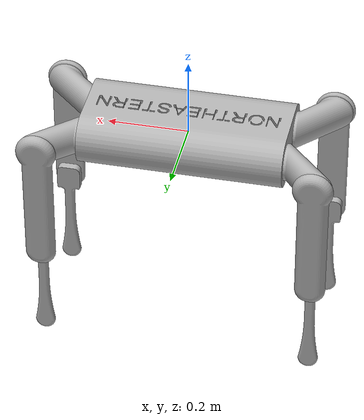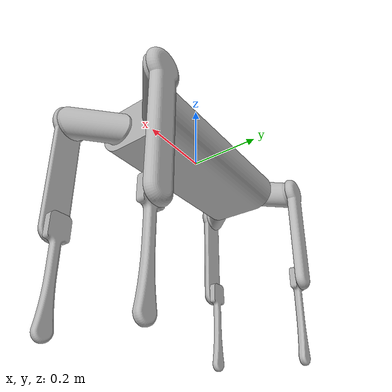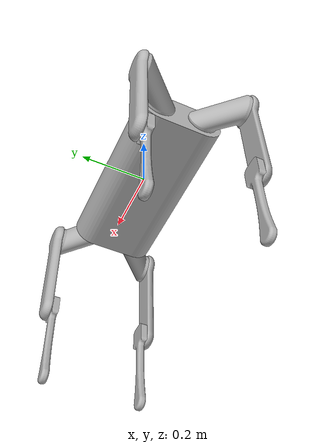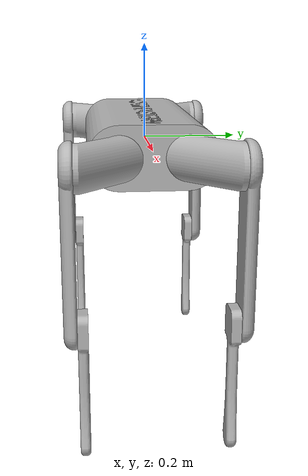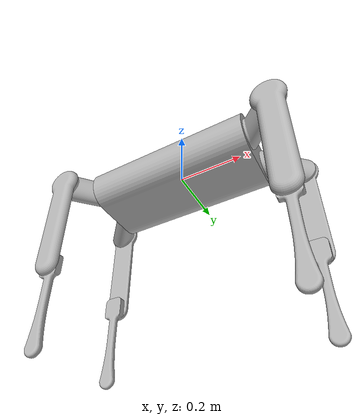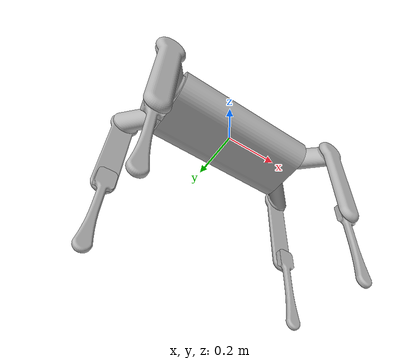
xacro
<?xml version="1.0" ?>
<robot name="proof_of_concept_3_dof_legs" xmlns:xacro="http://www.ros.org/wiki/xacro">

<xacro:include filename="$(find proof_of_concept_3_dof_legs_description)/urdf/materials.xacro" />
<xacro:include filename="$(find proof_of_concept_3_dof_legs_description)/urdf/proof_of_concept_3_dof_legs.trans" />
<xacro:include filename="$(find proof_of_concept_3_dof_legs_description)/urdf/proof_of_concept_3_dof_legs.gazebo" />
<link name="base_link">
  <inertial>
    <origin rpy="0 0 0" xyz="-0.00017512784283862714 -0.0022640105890242702 -0.004685230826412168"/>
    <mass value="113.28649675038626"/>
    <inertia ixx="0.655688" ixy="-1e-06" ixz="4.6e-05" iyy="2.474125" iyz="2.7e-05" izz="2.854946"/>
  </inertial>
  <visual>
    <origin rpy="0 0 0" xyz="0 0 0"/>
    <geometry>
      <mesh filename="package://proof_of_concept_3_dof_legs_description/meshes/base_link.stl" scale="0.001 0.001 0.001"/>
    </geometry>
    <material name="silver"/>
  </visual>
  <collision>
    <origin rpy="0 0 0" xyz="0 0 0"/>
    <geometry>
      <mesh filename="package://proof_of_concept_3_dof_legs_description/meshes/base_link.stl" scale="0.001 0.001 0.001"/>
    </geometry>
  </collision>
</link>

<link name="lf_connector_1">
  <inertial>
    <origin rpy="0 0 0" xyz="-0.05890692770524361 -0.04146661261388823 -3.508104041045901e-07"/>
    <mass value="5.973532362509098"/>
    <inertia ixx="0.011226" ixy="-0.006051" ixz="0.0" iyy="0.01025" iyz="0.0" izz="0.015428"/>
  </inertial>
  <visual>
    <origin rpy="0 0 0" xyz="0.241468 0.069352 0.004431"/>
    <geometry>
      <mesh filename="package://proof_of_concept_3_dof_legs_description/meshes/lf_connector_1.stl" scale="0.001 0.001 0.001"/>
    </geometry>
    <material name="silver"/>
  </visual>
  <collision>
    <origin rpy="0 0 0" xyz="0.241468 0.069352 0.004431"/>
    <geometry>
      <mesh filename="package://proof_of_concept_3_dof_legs_description/meshes/lf_connector_1.stl" scale="0.001 0.001 0.001"/>
    </geometry>
  </collision>
</link>

<link name="rf_connector_1">
  <inertial>
    <origin rpy="0 0 0" xyz="-0.05890692770524361 0.04146627542331387 -3.5081040409591646e-07"/>
    <mass value="5.973532362509098"/>
    <inertia ixx="0.011226" ixy="0.006051" ixz="0.0" iyy="0.01025" iyz="-0.0" izz="0.015428"/>
  </inertial>
  <visual>
    <origin rpy="0 0 0" xyz="0.241468 -0.064739 0.004431"/>
    <geometry>
      <mesh filename="package://proof_of_concept_3_dof_legs_description/meshes/rf_connector_1.stl" scale="0.001 0.001 0.001"/>
    </geometry>
    <material name="silver"/>
  </visual>
  <collision>
    <origin rpy="0 0 0" xyz="0.241468 -0.064739 0.004431"/>
    <geometry>
      <mesh filename="package://proof_of_concept_3_dof_legs_description/meshes/rf_connector_1.stl" scale="0.001 0.001 0.001"/>
    </geometry>
  </collision>
</link>

<link name="rh_connector_1">
  <inertial>
    <origin rpy="0 0 0" xyz="0.061564112863926934 0.037293263920169156 -3.5081040508904565e-07"/>
    <mass value="5.973532362509098"/>
    <inertia ixx="0.01025" ixy="-0.006051" ixz="0.0" iyy="0.011226" iyz="0.0" izz="0.015428"/>
  </inertial>
  <visual>
    <origin rpy="0 0 0" xyz="-0.241132 -0.064739 0.004431"/>
    <geometry>
      <mesh filename="package://proof_of_concept_3_dof_legs_description/meshes/rh_connector_1.stl" scale="0.001 0.001 0.001"/>
    </geometry>
    <material name="silver"/>
  </visual>
  <collision>
    <origin rpy="0 0 0" xyz="-0.241132 -0.064739 0.004431"/>
    <geometry>
      <mesh filename="package://proof_of_concept_3_dof_legs_description/meshes/rh_connector_1.stl" scale="0.001 0.001 0.001"/>
    </geometry>
  </collision>
</link>

<link name="lh_connector_1">
  <inertial>
    <origin rpy="0 0 0" xyz="0.06156411286392699 -0.03729360111074348 -3.5081040509858663e-07"/>
    <mass value="5.973532362509098"/>
    <inertia ixx="0.01025" ixy="0.006051" ixz="0.0" iyy="0.011226" iyz="-0.0" izz="0.015428"/>
  </inertial>
  <visual>
    <origin rpy="0 0 0" xyz="-0.241132 0.069352 0.004431"/>
    <geometry>
      <mesh filename="package://proof_of_concept_3_dof_legs_description/meshes/lh_connector_1.stl" scale="0.001 0.001 0.001"/>
    </geometry>
    <material name="silver"/>
  </visual>
  <collision>
    <origin rpy="0 0 0" xyz="-0.241132 0.069352 0.004431"/>
    <geometry>
      <mesh filename="package://proof_of_concept_3_dof_legs_description/meshes/lh_connector_1.stl" scale="0.001 0.001 0.001"/>
    </geometry>
  </collision>
</link>

<link name="lf_upper_1">
  <inertial>
    <origin rpy="0 0 0" xyz="0.001612157727558794 -0.002851019911941838 -0.14873802492206387"/>
    <mass value="4.692716099399879"/>
    <inertia ixx="0.049843" ixy="-5e-06" ixz="0.000212" iyy="0.05174" iyz="0.000359" izz="0.002346"/>
  </inertial>
  <visual>
    <origin rpy="0 0 0" xyz="0.337668 0.172383 0.004431"/>
    <geometry>
      <mesh filename="package://proof_of_concept_3_dof_legs_description/meshes/lf_upper_1.stl" scale="0.001 0.001 0.001"/>
    </geometry>
    <material name="silver"/>
  </visual>
  <collision>
    <origin rpy="0 0 0" xyz="0.337668 0.172383 0.004431"/>
    <geometry>
      <mesh filename="package://proof_of_concept_3_dof_legs_description/meshes/lf_upper_1.stl" scale="0.001 0.001 0.001"/>
    </geometry>
  </collision>
</link>

<link name="rf_upper_1">
  <inertial>
    <origin rpy="0 0 0" xyz="-0.0016125225409798771 0.0028506827213675145 -0.14873802492206414"/>
    <mass value="4.692716099399879"/>
    <inertia ixx="0.049843" ixy="-5e-06" ixz="-0.000212" iyy="0.05174" iyz="-0.000359" izz="0.002346"/>
  </inertial>
  <visual>
    <origin rpy="0 0 0" xyz="0.337668 -0.16777 0.004431"/>
    <geometry>
      <mesh filename="package://proof_of_concept_3_dof_legs_description/meshes/rf_upper_1.stl" scale="0.001 0.001 0.001"/>
    </geometry>
    <material name="silver"/>
  </visual>
  <collision>
    <origin rpy="0 0 0" xyz="0.337668 -0.16777 0.004431"/>
    <geometry>
      <mesh filename="package://proof_of_concept_3_dof_legs_description/meshes/rf_upper_1.stl" scale="0.001 0.001 0.001"/>
    </geometry>
  </collision>
</link>

<link name="rh_upper_1">
  <inertial>
    <origin rpy="0 0 0" xyz="-0.001611961065731582 0.0028511212461185542 -0.14873802492206517"/>
    <mass value="4.692716099399879"/>
    <inertia ixx="0.049843" ixy="-5e-06" ixz="-0.000212" iyy="0.05174" iyz="-0.000359" izz="0.002346"/>
  </inertial>
  <visual>
    <origin rpy="0 0 0" xyz="-0.344162 -0.160939 0.004431"/>
    <geometry>
      <mesh filename="package://proof_of_concept_3_dof_legs_description/meshes/rh_upper_1.stl" scale="0.001 0.001 0.001"/>
    </geometry>
    <material name="silver"/>
  </visual>
  <collision>
    <origin rpy="0 0 0" xyz="-0.344162 -0.160939 0.004431"/>
    <geometry>
      <mesh filename="package://proof_of_concept_3_dof_legs_description/meshes/rh_upper_1.stl" scale="0.001 0.001 0.001"/>
    </geometry>
  </collision>
</link>

<link name="lh_upper_1">
  <inertial>
    <origin rpy="0 0 0" xyz="0.0016127192028073112 -0.002851458436693405 -0.1487380249220648"/>
    <mass value="4.692716099399879"/>
    <inertia ixx="0.049843" ixy="-5e-06" ixz="0.000212" iyy="0.05174" iyz="0.000359" izz="0.002346"/>
  </inertial>
  <visual>
    <origin rpy="0 0 0" xyz="-0.344162 0.165552 0.004431"/>
    <geometry>
      <mesh filename="package://proof_of_concept_3_dof_legs_description/meshes/lh_upper_1.stl" scale="0.001 0.001 0.001"/>
    </geometry>
    <material name="silver"/>
  </visual>
  <collision>
    <origin rpy="0 0 0" xyz="-0.344162 0.165552 0.004431"/>
    <geometry>
      <mesh filename="package://proof_of_concept_3_dof_legs_description/meshes/lh_upper_1.stl" scale="0.001 0.001 0.001"/>
    </geometry>
  </collision>
</link>

<link name="lf_lower_1">
  <inertial>
    <origin rpy="0 0 0" xyz="-2.6893604017086403e-06 0.018739518858223253 -0.09273022678906145"/>
    <mass value="1.8340904220274463"/>
    <inertia ixx="0.016816" ixy="-0.0" ixz="0.0" iyy="0.01703" iyz="0.000214" izz="0.000385"/>
  </inertial>
  <visual>
    <origin rpy="0 0 0" xyz="0.335768 0.172383 0.309431"/>
    <geometry>
      <mesh filename="package://proof_of_concept_3_dof_legs_description/meshes/lf_lower_1.stl" scale="0.001 0.001 0.001"/>
    </geometry>
    <material name="silver"/>
  </visual>
  <collision>
    <origin rpy="0 0 0" xyz="0.335768 0.172383 0.309431"/>
    <geometry>
      <mesh filename="package://proof_of_concept_3_dof_legs_description/meshes/lf_lower_1.stl" scale="0.001 0.001 0.001"/>
    </geometry>
  </collision>
</link>

<link name="rf_lower_1">
  <inertial>
    <origin rpy="0 0 0" xyz="2.3245469799038077e-06 -0.018739856048797354 -0.09273022678906145"/>
    <mass value="1.8340904220274463"/>
    <inertia ixx="0.016816" ixy="-0.0" ixz="-0.0" iyy="0.01703" iyz="-0.000214" izz="0.000385"/>
  </inertial>
  <visual>
    <origin rpy="0 0 0" xyz="0.339568 -0.16777 0.309431"/>
    <geometry>
      <mesh filename="package://proof_of_concept_3_dof_legs_description/meshes/rf_lower_1.stl" scale="0.001 0.001 0.001"/>
    </geometry>
    <material name="silver"/>
  </visual>
  <collision>
    <origin rpy="0 0 0" xyz="0.339568 -0.16777 0.309431"/>
    <geometry>
      <mesh filename="package://proof_of_concept_3_dof_legs_description/meshes/rf_lower_1.stl" scale="0.001 0.001 0.001"/>
    </geometry>
  </collision>
</link>

<link name="rh_lower_1">
  <inertial>
    <origin rpy="0 0 0" xyz="2.886022228365537e-06 -0.01873941752404598 -0.0927302267890624"/>
    <mass value="1.8340904220274463"/>
    <inertia ixx="0.016816" ixy="-0.0" ixz="-0.0" iyy="0.01703" iyz="-0.000214" izz="0.000385"/>
  </inertial>
  <visual>
    <origin rpy="0 0 0" xyz="-0.342262 -0.160939 0.309431"/>
    <geometry>
      <mesh filename="package://proof_of_concept_3_dof_legs_description/meshes/rh_lower_1.stl" scale="0.001 0.001 0.001"/>
    </geometry>
    <material name="silver"/>
  </visual>
  <collision>
    <origin rpy="0 0 0" xyz="-0.342262 -0.160939 0.309431"/>
    <geometry>
      <mesh filename="package://proof_of_concept_3_dof_legs_description/meshes/rh_lower_1.stl" scale="0.001 0.001 0.001"/>
    </geometry>
  </collision>
</link>

<link name="lh_lower_1">
  <inertial>
    <origin rpy="0 0 0" xyz="-2.1278851531914e-06 0.018739080333471603 -0.09273022678906229"/>
    <mass value="1.8340904220274463"/>
    <inertia ixx="0.016816" ixy="-0.0" ixz="0.0" iyy="0.01703" iyz="0.000214" izz="0.000385"/>
  </inertial>
  <visual>
    <origin rpy="0 0 0" xyz="-0.346062 0.165552 0.309431"/>
    <geometry>
      <mesh filename="package://proof_of_concept_3_dof_legs_description/meshes/lh_lower_1.stl" scale="0.001 0.001 0.001"/>
    </geometry>
    <material name="silver"/>
  </visual>
  <collision>
    <origin rpy="0 0 0" xyz="-0.346062 0.165552 0.309431"/>
    <geometry>
      <mesh filename="package://proof_of_concept_3_dof_legs_description/meshes/lh_lower_1.stl" scale="0.001 0.001 0.001"/>
    </geometry>
  </collision>
</link>

<joint name="lf1" type="continuous">
  <origin rpy="0 0 0" xyz="-0.241468 -0.069352 -0.004431"/>
  <parent link="base_link"/>
  <child link="lf_connector_1"/>
  <axis xyz="-1.0 0.0 0.0"/>
</joint>

<joint name="rf1" type="continuous">
  <origin rpy="0 0 0" xyz="-0.241468 0.064739 -0.004431"/>
  <parent link="base_link"/>
  <child link="rf_connector_1"/>
  <axis xyz="-1.0 0.0 0.0"/>
</joint>

<joint name="rh1" type="continuous">
  <origin rpy="0 0 0" xyz="0.241132 0.064739 -0.004431"/>
  <parent link="base_link"/>
  <child link="rh_connector_1"/>
  <axis xyz="1.0 0.0 -0.0"/>
</joint>

<joint name="lh1" type="continuous">
  <origin rpy="0 0 0" xyz="0.241132 -0.069352 -0.004431"/>
  <parent link="base_link"/>
  <child link="lh_connector_1"/>
  <axis xyz="1.0 0.0 -0.0"/>
</joint>

<joint name="lf2" type="continuous">
  <origin rpy="0 0 0" xyz="-0.0962 -0.103031 0.0"/>
  <parent link="lf_connector_1"/>
  <child link="lf_upper_1"/>
  <axis xyz="-0.0 -1.0 -0.0"/>
</joint>

<joint name="rf2" type="continuous">
  <origin rpy="0 0 0" xyz="-0.0962 0.103031 0.0"/>
  <parent link="rf_connector_1"/>
  <child link="rf_upper_1"/>
  <axis xyz="-0.0 1.0 -0.0"/>
</joint>

<joint name="rh2" type="continuous">
  <origin rpy="0 0 0" xyz="0.10303 0.0962 0.0"/>
  <parent link="rh_connector_1"/>
  <child link="rh_upper_1"/>
  <axis xyz="-0.0 1.0 0.0"/>
</joint>

<joint name="lh2" type="continuous">
  <origin rpy="0 0 0" xyz="0.10303 -0.0962 0.0"/>
  <parent link="lh_connector_1"/>
  <child link="lh_upper_1"/>
  <axis xyz="-0.0 -1.0 0.0"/>
</joint>

<joint name="lf3" type="continuous">
  <origin rpy="0 0 0" xyz="0.0019 0.0 -0.305"/>
  <parent link="lf_upper_1"/>
  <child link="lf_lower_1"/>
  <axis xyz="-0.0 1.0 0.0"/>
</joint>

<joint name="rf3" type="continuous">
  <origin rpy="0 0 0" xyz="-0.0019 0.0 -0.305"/>
  <parent link="rf_upper_1"/>
  <child link="rf_lower_1"/>
  <axis xyz="0.0 -1.0 0.0"/>
</joint>

<joint name="rh3" type="continuous">
  <origin rpy="0 0 0" xyz="-0.0019 0.0 -0.305"/>
  <parent link="rh_upper_1"/>
  <child link="rh_lower_1"/>
  <axis xyz="0.0 -1.0 -0.0"/>
</joint>

<joint name="lh3" type="continuous">
  <origin rpy="0 0 0" xyz="0.0019 0.0 -0.305"/>
  <parent link="lh_upper_1"/>
  <child link="lh_lower_1"/>
  <axis xyz="-0.0 1.0 -0.0"/>
</joint>

</robot>

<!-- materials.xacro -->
<robot name="proof_of_concept_3_dof_legs" xmlns:xacro="http://www.ros.org/wiki/xacro" >

<material name="silver">
  <color rgba="0.700 0.700 0.700 1.000"/>
</material>

</robot>

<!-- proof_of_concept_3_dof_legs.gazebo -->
<robot name="proof_of_concept_3_dof_legs" xmlns:xacro="http://www.ros.org/wiki/xacro" >

<xacro:property name="body_color" value="Gazebo/Silver" />

<gazebo>
  <plugin name="gazebo_ros_control" filename="libgazebo_ros_control.so">
    <robotNamespace>/proof_of_concept_3_dof_legs</robotNamespace>
  </plugin>
</gazebo>

<gazebo reference="base_link">
  <material>${body_color}</material>
  <mu1>0.2</mu1>
  <mu2>0.2</mu2>
  <selfCollide>true</selfCollide>
  <gravity>true</gravity>
</gazebo>

<gazebo reference="lf_connector_1">
  <material>${body_color}</material>
  <mu1>0.2</mu1>
  <mu2>0.2</mu2>
  <selfCollide>true</selfCollide>
</gazebo>

<gazebo reference="rf_connector_1">
  <material>${body_color}</material>
  <mu1>0.2</mu1>
  <mu2>0.2</mu2>
  <selfCollide>true</selfCollide>
</gazebo>

<gazebo reference="rh_connector_1">
  <material>${body_color}</material>
  <mu1>0.2</mu1>
  <mu2>0.2</mu2>
  <selfCollide>true</selfCollide>
</gazebo>

<gazebo reference="lh_connector_1">
  <material>${body_color}</material>
  <mu1>0.2</mu1>
  <mu2>0.2</mu2>
  <selfCollide>true</selfCollide>
</gazebo>

<gazebo reference="lf_upper_1">
  <material>${body_color}</material>
  <mu1>0.2</mu1>
  <mu2>0.2</mu2>
  <selfCollide>true</selfCollide>
</gazebo>

<gazebo reference="rf_upper_1">
  <material>${body_color}</material>
  <mu1>0.2</mu1>
  <mu2>0.2</mu2>
  <selfCollide>true</selfCollide>
</gazebo>

<gazebo reference="rh_upper_1">
  <material>${body_color}</material>
  <mu1>0.2</mu1>
  <mu2>0.2</mu2>
  <selfCollide>true</selfCollide>
</gazebo>

<gazebo reference="lh_upper_1">
  <material>${body_color}</material>
  <mu1>0.2</mu1>
  <mu2>0.2</mu2>
  <selfCollide>true</selfCollide>
</gazebo>

<gazebo reference="lf_lower_1">
  <material>${body_color}</material>
  <mu1>0.2</mu1>
  <mu2>0.2</mu2>
  <selfCollide>true</selfCollide>
</gazebo>

<gazebo reference="rf_lower_1">
  <material>${body_color}</material>
  <mu1>0.2</mu1>
  <mu2>0.2</mu2>
  <selfCollide>true</selfCollide>
</gazebo>

<gazebo reference="rh_lower_1">
  <material>${body_color}</material>
  <mu1>0.2</mu1>
  <mu2>0.2</mu2>
  <selfCollide>true</selfCollide>
</gazebo>

<gazebo reference="lh_lower_1">
  <material>${body_color}</material>
  <mu1>0.2</mu1>
  <mu2>0.2</mu2>
  <selfCollide>true</selfCollide>
</gazebo>

</robot>
